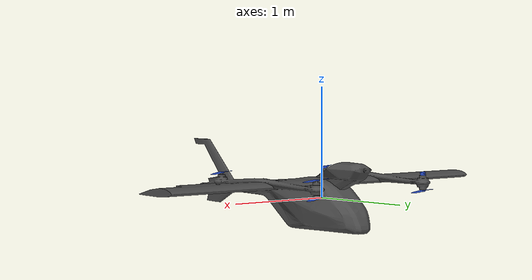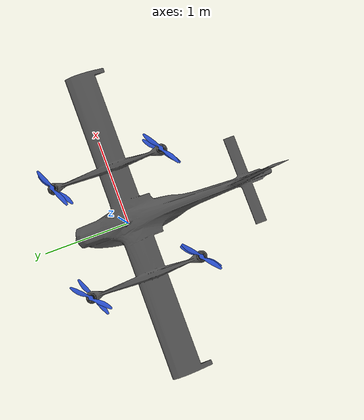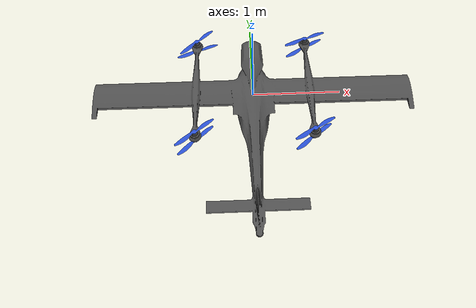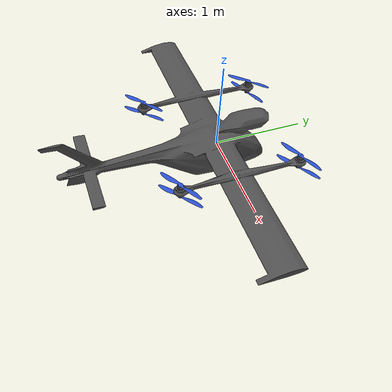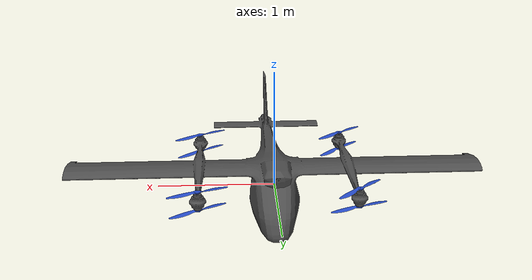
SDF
<?xml version="1.0"?>
<sdf version='1.5'>
  <model name='airmedic'>
    <link name='base_link'>
      <inertial>
        <pose>0 0 0 0 0 0</pose>
        <mass>28.103</mass>
        <inertia>
          <ixx>4.8387</ixx>
          <ixy>8.9699e-05</ixy>
          <ixz>0.00037419</ixz>
          <iyy>10.112</iyy>
          <iyz>0.098831</iyz>
          <izz>13.809</izz>
        </inertia>
      </inertial>
      <collision name='base_link_collision'>
        <pose>0 0 0 0 -0 0</pose>
        <geometry>
          <box>
            <size>1 1 1</size>
          </box>
          <mesh>
            <scale>1 1 1</scale>
            <uri>model://airmedic/meshes/base_link.dae</uri>
          </mesh>
        </geometry>
        <surface>
          <contact>
            <ode>
              <kp>600000</kp>
              <kd>6.0</kd>
              <max_vel>0.6</max_vel>
              <min_depth>0.006</min_depth>
            </ode>
          </contact>
          <friction>
            <ode/>
          </friction>
        </surface>
      </collision>
      <visual name='base_link_visual'>
        <pose>0 0 0 0 -0 0</pose>
        <geometry>
          <mesh>
            <scale>1 1 1</scale>
            <uri>model://airmedic/meshes/base_link.dae</uri>
          </mesh>
        </geometry>
        <material>
          <script>
            <name>Gazebo/DarkGrey</name>
            <uri>__default__</uri>
          </script>
        </material>
      </visual>
    </link>
    <link name='airmedic/imu_link'>
      <pose>0 0 0 0 0 0</pose>
      <inertial>
        <pose>0 0 0 0 0 0</pose>
        <mass>0.015</mass>
        <inertia>
          <ixx>1e-05</ixx>
          <ixy>0</ixy>
          <ixz>0</ixz>
          <iyy>1e-05</iyy>
          <iyz>0</iyz>
          <izz>1e-05</izz>
        </inertia>
      </inertial>
    </link>
    <joint name='airmedic/imu_joint' type='revolute'>
      <child>airmedic/imu_link</child>
      <parent>base_link</parent>
      <axis>
        <xyz>1 0 0</xyz>
        <limit>
          <lower>0</lower>
          <upper>0</upper>
          <effort>0</effort>
          <velocity>0</velocity>
        </limit>
        <dynamics>
          <spring_reference>0</spring_reference>
          <spring_stiffness>0</spring_stiffness>
        </dynamics>
        <use_parent_model_frame>1</use_parent_model_frame>
      </axis>
    </joint>
    <include>
      <uri>model://airspeed</uri>
      <pose>0 0 0 0 0 0</pose>
      <name>airspeed</name>
    </include>
    <include>
      <uri>model://gps</uri>
      <pose>0 0 0 0 0 0</pose>
      <name>gps</name>
    </include>
    <joint name='airspeed_joint' type='fixed'>
      <child>airspeed::link</child>
      <parent>base_link</parent>
    </joint>
    <joint name='gps_joint' type='fixed'>
      <child>gps::link</child>
      <parent>base_link</parent>
    </joint>
    <joint name='VV1' type='revolute'>
      <pose relative_to='base_link'>0.64286 0.64302 0.22124 0 -0 0</pose>
      <parent>base_link</parent>
      <child>Link_8</child>
      <axis>
        <xyz>0 0 1</xyz>
        <limit>
          <lower>-1e+16</lower>
          <upper>1e+16</upper>
        </limit>
        <dynamics>
          <spring_reference>0</spring_reference>
          <spring_stiffness>0</spring_stiffness>
        </dynamics>
        <use_parent_model_frame>1</use_parent_model_frame>
      </axis>
    </joint>
    <link name='Link_8'>
      <pose relative_to='VV1'>0 0 0 0 -0 0</pose>
      <inertial>
        <pose>-0 -0 0.00531 0 -0 0</pose>
        <mass>0.0625</mass>
        <inertia>
          <ixx>1.0888e-05</ixx>
          <ixy>1.2773e-05</ixy>
          <ixz>-1.0342e-11</ixz>
          <iyy>0.00090319</iyy>
          <iyz>1.2261e-12</iyz>
          <izz>0.0009134</izz>
        </inertia>
      </inertial>
      <collision name='Link_8_collision'>
        <pose>0 0 0 0 -0 0</pose>
        <geometry>
          <mesh>
            <scale>1 1 1</scale>
            <uri>model://airmedic/meshes/Link_8.dae</uri>
          </mesh>
        </geometry>
        <surface>
          <contact>
            <ode/>
          </contact>
          <friction>
            <ode/>
          </friction>
        </surface>
      </collision>
      <visual name='Link_8_visual'>
        <pose>0 0 0 0 -0 0</pose>
        <geometry>
          <mesh>
            <scale>1 1 1</scale>
            <uri>model://airmedic/meshes/Link_8.dae</uri>
          </mesh>
        </geometry>
        <material>
          <script>
            <name>Gazebo/Blue</name>
            <uri>__default__</uri>
          </script>
        </material>
      </visual>
      <gravity>1</gravity>
      <velocity_decay/>
      <self_collide>0</self_collide>
    </link>
    <joint name='VV2' type='revolute'>
      <pose relative_to='base_link'>-0.64286 0.64302 0.22124 0 -0 0</pose>
      <parent>base_link</parent>
      <child>Link_9</child>
      <axis>
        <xyz>0 0 1</xyz>
        <limit>
          <lower>-1e+16</lower>
          <upper>1e+16</upper>
        </limit>
        <dynamics>
          <spring_reference>0</spring_reference>
          <spring_stiffness>0</spring_stiffness>
        </dynamics>
        <use_parent_model_frame>1</use_parent_model_frame>
      </axis>
    </joint>
    <link name='Link_9'>
      <pose relative_to='VV2'>0 0 0 0 -0 0</pose>
      <inertial>
        <pose>-0 -0 0.00531 0 -0 0</pose>
        <mass>0.0625</mass>
        <inertia>
          <ixx>1.0888e-05</ixx>
          <ixy>-1.2772e-05</ixy>
          <ixz>-1.7183e-12</ixz>
          <iyy>0.00090318</iyy>
          <iyz>1.3497e-12</iyz>
          <izz>0.0009134</izz>
        </inertia>
      </inertial>
      <collision name='Link_9_collision'>
        <pose>0 0 0 0 -0 0</pose>
        <geometry>
          <mesh>
            <scale>1 1 1</scale>
            <uri>model://airmedic/meshes/Link_9.dae</uri>
          </mesh>
        </geometry>
        <surface>
          <contact>
            <ode/>
          </contact>
          <friction>
            <ode/>
          </friction>
        </surface>
      </collision>
      <visual name='Link_9_visual'>
        <pose>0 0 0 0 -0 0</pose>
        <geometry>
          <mesh>
            <scale>1 1 1</scale>
            <uri>model://airmedic/meshes/Link_9.dae</uri>
          </mesh>
        </geometry>
        <material>
          <script>
            <name>Gazebo/Blue</name>
            <uri>__default__</uri>
          </script>
        </material>
      </visual>
      <gravity>1</gravity>
      <velocity_decay/>
      <self_collide>0</self_collide>
    </link>
    <joint name='VV3' type='revolute'>
      <pose relative_to='base_link'>-0.64286 -0.6427 0.22124 0 -0 0</pose>
      <parent>base_link</parent>
      <child>Link_10</child>
      <axis>
        <xyz>0 0 1</xyz>
        <limit>
          <lower>-1e+16</lower>
          <upper>1e+16</upper>
        </limit>
        <dynamics>
          <spring_reference>0</spring_reference>
          <spring_stiffness>0</spring_stiffness>
        </dynamics>
        <use_parent_model_frame>1</use_parent_model_frame>
      </axis>
    </joint>
    <link name='Link_10'>
      <pose relative_to='VV3'>0 0 0 0 -0 0</pose>
      <inertial>
        <pose>0 0 0.00531 0 -0 0</pose>
        <mass>0.0625</mass>
        <inertia>
          <ixx>1.0888e-05</ixx>
          <ixy>1.2773e-05</ixy>
          <ixz>1.0342e-11</ixz>
          <iyy>0.00090319</iyy>
          <iyz>-1.2261e-12</iyz>
          <izz>0.0009134</izz>
        </inertia>
      </inertial>
      <collision name='Link_10_collision'>
        <pose>0 0 0 0 -0 0</pose>
        <geometry>
          <mesh>
            <scale>1 1 1</scale>
            <uri>model://airmedic/meshes/Link_10.dae</uri>
          </mesh>
        </geometry>
        <surface>
          <contact>
            <ode/>
          </contact>
          <friction>
            <ode/>
          </friction>
        </surface>
      </collision>
      <visual name='Link_10_visual'>
        <pose>0 0 0 0 -0 0</pose>
        <geometry>
          <mesh>
            <scale>1 1 1</scale>
            <uri>model://airmedic/meshes/Link_10.dae</uri>
          </mesh>
        </geometry>
        <material>
          <script>
            <name>Gazebo/Blue</name>
            <uri>__default__</uri>
          </script>
        </material>
      </visual>
      <gravity>1</gravity>
      <velocity_decay/>
      <self_collide>0</self_collide>
    </link>
    <joint name='VV4' type='revolute'>
      <pose relative_to='base_link'>0.64286 -0.6427 0.22124 0 -0 0</pose>
      <parent>base_link</parent>
      <child>Link_11</child>
      <axis>
        <xyz>0 0 1</xyz>
        <limit>
          <lower>-1e+16</lower>
          <upper>1e+16</upper>
        </limit>
        <dynamics>
          <spring_reference>0</spring_reference>
          <spring_stiffness>0</spring_stiffness>
        </dynamics>
        <use_parent_model_frame>1</use_parent_model_frame>
      </axis>
    </joint>
    <link name='Link_11'>
      <pose relative_to='VV4'>0 0 0 0 -0 0</pose>
      <inertial>
        <pose>0 0 0.00531 0 -0 0</pose>
        <mass>0.0625</mass>
        <inertia>
          <ixx>1.0888e-05</ixx>
          <ixy>-1.2772e-05</ixy>
          <ixz>1.7183e-12</ixz>
          <iyy>0.00090318</iyy>
          <iyz>-1.3497e-12</iyz>
          <izz>0.0009134</izz>
        </inertia>
      </inertial>
      <collision name='Link_11_collision'>
        <pose>0 0 0 0 -0 0</pose>
        <geometry>
          <mesh>
            <scale>1 1 1</scale>
            <uri>model://airmedic/meshes/Link_11.dae</uri>
          </mesh>
        </geometry>
        <surface>
          <contact>
            <ode/>
          </contact>
          <friction>
            <ode/>
          </friction>
        </surface>
      </collision>
      <visual name='Link_11_visual'>
        <pose>0 0 0 0 -0 0</pose>
        <geometry>
          <mesh>
            <scale>1 1 1</scale>
            <uri>model://airmedic/meshes/Link_11.dae</uri>
          </mesh>
        </geometry>
        <material>
          <script>
            <name>Gazebo/Blue</name>
            <uri>__default__</uri>
          </script>
        </material>
      </visual>
      <gravity>1</gravity>
      <velocity_decay/>
      <self_collide>0</self_collide>
    </link>
    <joint name='VV5' type='revolute'>
      <pose relative_to='base_link'>-0.64286 0.64302 0.0645 0 -0 0</pose>
      <parent>base_link</parent>
      <child>Link_12</child>
      <axis>
        <xyz>0 0 1</xyz>
        <limit>
          <lower>-1e+16</lower>
          <upper>1e+16</upper>
        </limit>
        <dynamics>
          <spring_reference>0</spring_reference>
          <spring_stiffness>0</spring_stiffness>
        </dynamics>
        <use_parent_model_frame>1</use_parent_model_frame>
      </axis>
    </joint>
    <link name='Link_12'>
      <pose relative_to='VV5'>0 0 0 0 -0 0</pose>
      <inertial>
        <pose>0 0 -0.004947 0 -0 0</pose>
        <mass>0.0625</mass>
        <inertia>
          <ixx>1.0888e-05</ixx>
          <ixy>1.2773e-05</ixy>
          <ixz>1.0342e-11</ixz>
          <iyy>0.00090319</iyy>
          <iyz>-1.2261e-12</iyz>
          <izz>0.0009134</izz>
        </inertia>
      </inertial>
      <collision name='Link_12_collision'>
        <pose>0 0 0 0 -0 0</pose>
        <geometry>
          <mesh>
            <scale>1 1 1</scale>
            <uri>model://airmedic/meshes/Link_12.dae</uri>
          </mesh>
        </geometry>
        <surface>
          <contact>
            <ode/>
          </contact>
          <friction>
            <ode/>
          </friction>
        </surface>
      </collision>
      <visual name='Link_12_visual'>
        <pose>0 0 0 0 -0 0</pose>
        <geometry>
          <mesh>
            <scale>1 1 1</scale>
            <uri>model://airmedic/meshes/Link_12.dae</uri>
          </mesh>
        </geometry>
        <material>
          <script>
            <name>Gazebo/Blue</name>
            <uri>__default__</uri>
          </script>
        </material>
      </visual>
      <gravity>1</gravity>
      <velocity_decay/>
      <self_collide>0</self_collide>
    </link>
    <joint name='VV6' type='revolute'>
      <pose relative_to='base_link'>0.64286 0.64302 0.0645 0 -0 0</pose>
      <parent>base_link</parent>
      <child>Link_13</child>
      <axis>
        <xyz>0 0 1</xyz>
        <limit>
          <lower>-1e+16</lower>
          <upper>1e+16</upper>
        </limit>
        <dynamics>
          <spring_reference>0</spring_reference>
          <spring_stiffness>0</spring_stiffness>
        </dynamics>
        <use_parent_model_frame>1</use_parent_model_frame>
      </axis>
    </joint>
    <link name='Link_13'>
      <pose relative_to='VV6'>0 0 0 0 -0 0</pose>
      <inertial>
        <pose>0 0 -0.004947 0 -0 0</pose>
        <mass>0.0625</mass>
        <inertia>
          <ixx>1.0888e-05</ixx>
          <ixy>-1.2772e-05</ixy>
          <ixz>1.7183e-12</ixz>
          <iyy>0.00090318</iyy>
          <iyz>-1.3497e-12</iyz>
          <izz>0.0009134</izz>
        </inertia>
      </inertial>
      <collision name='Link_13_collision'>
        <pose>0 0 0 0 -0 0</pose>
        <geometry>
          <mesh>
            <scale>1 1 1</scale>
            <uri>model://airmedic/meshes/Link_13.dae</uri>
          </mesh>
        </geometry>
        <surface>
          <contact>
            <ode/>
          </contact>
          <friction>
            <ode/>
          </friction>
        </surface>
      </collision>
      <visual name='Link_13_visual'>
        <pose>0 0 0 0 -0 0</pose>
        <geometry>
          <mesh>
            <scale>1 1 1</scale>
            <uri>model://airmedic/meshes/Link_13.dae</uri>
          </mesh>
        </geometry>
        <material>
          <script>
            <name>Gazebo/Blue</name>
            <uri>__default__</uri>
          </script>
        </material>
      </visual>
      <gravity>1</gravity>
      <velocity_decay/>
      <self_collide>0</self_collide>
    </link>
    <joint name='VV7' type='revolute'>
      <pose relative_to='base_link'>0.64286 -0.6427 0.0645 0 -0 0</pose>
      <parent>base_link</parent>
      <child>Link_14</child>
      <axis>
        <xyz>0 0 1</xyz>
        <limit>
          <lower>-1e+16</lower>
          <upper>1e+16</upper>
        </limit>
        <dynamics>
          <spring_reference>0</spring_reference>
          <spring_stiffness>0</spring_stiffness>
        </dynamics>
        <use_parent_model_frame>1</use_parent_model_frame>
      </axis>
    </joint>
    <link name='Link_14'>
      <pose relative_to='VV7'>0 0 0 0 -0 0</pose>
      <inertial>
        <pose>0 0 -0.004947 0 -0 0</pose>
        <mass>0.0625</mass>
        <inertia>
          <ixx>1.0888e-05</ixx>
          <ixy>1.2773e-05</ixy>
          <ixz>1.0342e-11</ixz>
          <iyy>0.00090319</iyy>
          <iyz>-1.2261e-12</iyz>
          <izz>0.0009134</izz>
        </inertia>
      </inertial>
      <collision name='Link_14_collision'>
        <pose>0 0 0 0 -0 0</pose>
        <geometry>
          <mesh>
            <scale>1 1 1</scale>
            <uri>model://airmedic/meshes/Link_14.dae</uri>
          </mesh>
        </geometry>
        <surface>
          <contact>
            <ode/>
          </contact>
          <friction>
            <ode/>
          </friction>
        </surface>
      </collision>
      <visual name='Link_14_visual'>
        <pose>0 0 0 0 -0 0</pose>
        <geometry>
          <mesh>
            <scale>1 1 1</scale>
            <uri>model://airmedic/meshes/Link_14.dae</uri>
          </mesh>
        </geometry>
        <material>
          <script>
            <name>Gazebo/Blue</name>
            <uri>__default__</uri>
          </script>
        </material>
      </visual>
      <gravity>1</gravity>
      <velocity_decay/>
      <self_collide>0</self_collide>
    </link>
    <joint name='VV8' type='revolute'>
      <pose relative_to='base_link'>-0.64286 -0.6427 0.0645 0 -0 0</pose>
      <parent>base_link</parent>
      <child>Link_15</child>
      <axis>
        <xyz>0 0 1</xyz>
        <limit>
          <lower>-1e+16</lower>
          <upper>1e+16</upper>
        </limit>
        <dynamics>
          <spring_reference>0</spring_reference>
          <spring_stiffness>0</spring_stiffness>
        </dynamics>
        <use_parent_model_frame>1</use_parent_model_frame>
      </axis>
    </joint>
    <link name='Link_15'>
      <pose relative_to='VV8'>0 0 0 0 -0 0</pose>
      <inertial>
        <pose>0 0 -0.004947 0 -0 0</pose>
        <mass>0.0625</mass>
        <inertia>
          <ixx>1.0888e-05</ixx>
          <ixy>-1.2772e-05</ixy>
          <ixz>1.7183e-12</ixz>
          <iyy>0.00090318</iyy>
          <iyz>-1.3497e-12</iyz>
          <izz>0.0009134</izz>
        </inertia>
      </inertial>
      <collision name='Link_15_collision'>
        <pose>0 0 0 0 -0 0</pose>
        <geometry>
          <mesh>
            <scale>1 1 1</scale>
            <uri>model://airmedic/meshes/Link_15.dae</uri>
          </mesh>
        </geometry>
        <surface>
          <contact>
            <ode/>
          </contact>
          <friction>
            <ode/>
          </friction>
        </surface>
      </collision>
      <visual name='Link_15_visual'>
        <pose>0 0 0 0 -0 0</pose>
        <geometry>
          <mesh>
            <scale>1 1 1</scale>
            <uri>model://airmedic/meshes/Link_15.dae</uri>
          </mesh>
        </geometry>
        <material>
          <script>
            <name>Gazebo/Blue</name>
            <uri>__default__</uri>
          </script>
        </material>
      </visual>
      <gravity>1</gravity>
      <velocity_decay/>
      <self_collide>0</self_collide>
    </link>
    <plugin name='VV1' filename='libgazebo_motor_model.so'>
      <robotNamespace></robotNamespace>
      <jointName>VV1</jointName>
      <linkName>Link_8</linkName>
      <turningDirection>ccw</turningDirection>
      <timeConstantUp>0.0125</timeConstantUp>
      <timeConstantDown>0.025</timeConstantDown>
      <maxRotVelocity>1500</maxRotVelocity>
      <motorConstant>2e-05</motorConstant>
      <momentConstant>0.06</momentConstant>
      <commandSubTopic>/gazebo/command/motor_speed</commandSubTopic>
      <motorNumber>0</motorNumber>
      <rotorDragCoefficient>0.000106428</rotorDragCoefficient>
      <rollingMomentCoefficient>1e-6</rollingMomentCoefficient>
      <motorSpeedPubTopic>/motor_speed/0</motorSpeedPubTopic>
      <rotorVelocitySlowdownSim>20</rotorVelocitySlowdownSim>
    </plugin>
    <plugin name='VV2' filename='libgazebo_motor_model.so'>
      <robotNamespace></robotNamespace>
      <jointName>VV2</jointName>
      <linkName>Link_9</linkName>
      <turningDirection>cw</turningDirection>
      <timeConstantUp>0.0125</timeConstantUp>
      <timeConstantDown>0.025</timeConstantDown>
      <maxRotVelocity>1500</maxRotVelocity>
      <motorConstant>2e-05</motorConstant>
      <momentConstant>0.06</momentConstant>
      <commandSubTopic>/gazebo/command/motor_speed</commandSubTopic>
      <motorNumber>1</motorNumber>
      <rotorDragCoefficient>0.000106428</rotorDragCoefficient>
      <rollingMomentCoefficient>1e-6</rollingMomentCoefficient>
      <motorSpeedPubTopic>/motor_speed/1</motorSpeedPubTopic>
      <rotorVelocitySlowdownSim>20</rotorVelocitySlowdownSim>
    </plugin>
    <plugin name='VV3' filename='libgazebo_motor_model.so'>
      <robotNamespace></robotNamespace>
      <jointName>VV3</jointName>
      <linkName>Link_10</linkName>
      <turningDirection>ccw</turningDirection>
      <timeConstantUp>0.0125</timeConstantUp>
      <timeConstantDown>0.025</timeConstantDown>
      <maxRotVelocity>1500</maxRotVelocity>
      <motorConstant>2e-05</motorConstant>
      <momentConstant>0.06</momentConstant>
      <commandSubTopic>/gazebo/command/motor_speed</commandSubTopic>
      <motorNumber>2</motorNumber>
      <rotorDragCoefficient>0.000106428</rotorDragCoefficient>
      <rollingMomentCoefficient>1e-6</rollingMomentCoefficient>
      <motorSpeedPubTopic>/motor_speed/2</motorSpeedPubTopic>
      <rotorVelocitySlowdownSim>20</rotorVelocitySlowdownSim>
    </plugin>
    <plugin name='VV4' filename='libgazebo_motor_model.so'>
      <robotNamespace></robotNamespace>
      <jointName>VV4</jointName>
      <linkName>Link_11</linkName>
      <turningDirection>cw</turningDirection>
      <timeConstantUp>0.0125</timeConstantUp>
      <timeConstantDown>0.025</timeConstantDown>
      <maxRotVelocity>1500</maxRotVelocity>
      <motorConstant>2e-05</motorConstant>
      <momentConstant>0.06</momentConstant>
      <commandSubTopic>/gazebo/command/motor_speed</commandSubTopic>
      <motorNumber>3</motorNumber>
      <rotorDragCoefficient>0.000106428</rotorDragCoefficient>
      <rollingMomentCoefficient>1e-6</rollingMomentCoefficient>
      <motorSpeedPubTopic>/motor_speed/3</motorSpeedPubTopic>
      <rotorVelocitySlowdownSim>20</rotorVelocitySlowdownSim>
    </plugin>
    <plugin name='VV5' filename='libgazebo_motor_model.so'>
      <robotNamespace></robotNamespace>
      <jointName>VV5</jointName>
      <linkName>Link_12</linkName>
      <turningDirection>ccw</turningDirection>
      <timeConstantUp>0.0125</timeConstantUp>
      <timeConstantDown>0.025</timeConstantDown>
      <maxRotVelocity>1500</maxRotVelocity>
      <motorConstant>2e-05</motorConstant>
      <momentConstant>0.06</momentConstant>
      <commandSubTopic>/gazebo/command/motor_speed</commandSubTopic>
      <motorNumber>4</motorNumber>
      <rotorDragCoefficient>0.000106428</rotorDragCoefficient>
      <rollingMomentCoefficient>1e-6</rollingMomentCoefficient>
      <motorSpeedPubTopic>/motor_speed/4</motorSpeedPubTopic>
      <rotorVelocitySlowdownSim>20</rotorVelocitySlowdownSim>
    </plugin>
    <plugin name='VV6' filename='libgazebo_motor_model.so'>
      <robotNamespace></robotNamespace>
      <jointName>VV6</jointName>
      <linkName>Link_13</linkName>
      <turningDirection>cw</turningDirection>
      <timeConstantUp>0.0125</timeConstantUp>
      <timeConstantDown>0.025</timeConstantDown>
      <maxRotVelocity>1500</maxRotVelocity>
      <motorConstant>2e-05</motorConstant>
      <momentConstant>0.06</momentConstant>
      <commandSubTopic>/gazebo/command/motor_speed</commandSubTopic>
      <motorNumber>5</motorNumber>
      <rotorDragCoefficient>0.000106428</rotorDragCoefficient>
      <rollingMomentCoefficient>1e-6</rollingMomentCoefficient>
      <motorSpeedPubTopic>/motor_speed/5</motorSpeedPubTopic>
      <rotorVelocitySlowdownSim>20</rotorVelocitySlowdownSim>
    </plugin>
    <plugin name='VV7' filename='libgazebo_motor_model.so'>
      <robotNamespace></robotNamespace>
      <jointName>VV7</jointName>
      <linkName>Link_14</linkName>
      <turningDirection>ccw</turningDirection>
      <timeConstantUp>0.0125</timeConstantUp>
      <timeConstantDown>0.025</timeConstantDown>
      <maxRotVelocity>1500</maxRotVelocity>
      <motorConstant>2e-05</motorConstant>
      <momentConstant>0.06</momentConstant>
      <commandSubTopic>/gazebo/command/motor_speed</commandSubTopic>
      <motorNumber>6</motorNumber>
      <rotorDragCoefficient>0.000106428</rotorDragCoefficient>
      <rollingMomentCoefficient>1e-6</rollingMomentCoefficient>
      <motorSpeedPubTopic>/motor_speed/6</motorSpeedPubTopic>
      <rotorVelocitySlowdownSim>20</rotorVelocitySlowdownSim>
    </plugin>
    <plugin name='VV8' filename='libgazebo_motor_model.so'>
      <robotNamespace></robotNamespace>
      <jointName>VV8</jointName>
      <linkName>Link_15</linkName>
      <turningDirection>cw</turningDirection>
      <timeConstantUp>0.0125</timeConstantUp>
      <timeConstantDown>0.025</timeConstantDown>
      <maxRotVelocity>1500</maxRotVelocity>
      <motorConstant>2e-05</motorConstant>
      <momentConstant>0.06</momentConstant>
      <commandSubTopic>/gazebo/command/motor_speed</commandSubTopic>
      <motorNumber>7</motorNumber>
      <rotorDragCoefficient>0.000106428</rotorDragCoefficient>
      <rollingMomentCoefficient>1e-6</rollingMomentCoefficient>
      <motorSpeedPubTopic>/motor_speed/7</motorSpeedPubTopic>
      <rotorVelocitySlowdownSim>20</rotorVelocitySlowdownSim>
    </plugin>
    <plugin name='gazebo_imu_plugin' filename='libgazebo_imu_plugin.so'>
      <robotNamespace></robotNamespace>
      <linkName>airmedic/imu_link</linkName>
      <imuTopic>/imu</imuTopic>
      <gyroscopeNoiseDensity>0.0003394</gyroscopeNoiseDensity>
      <gyroscopeRandomWalk>3.8785e-05</gyroscopeRandomWalk>
      <gyroscopeBiasCorrelationTime>1000.0</gyroscopeBiasCorrelationTime>
      <gyroscopeTurnOnBiasSigma>0.0087</gyroscopeTurnOnBiasSigma>
      <accelerometerNoiseDensity>0.004</accelerometerNoiseDensity>
      <accelerometerRandomWalk>0.006</accelerometerRandomWalk>
      <accelerometerBiasCorrelationTime>300.0</accelerometerBiasCorrelationTime>
      <accelerometerTurnOnBiasSigma>0.196</accelerometerTurnOnBiasSigma>
    </plugin>
    <plugin name='groundtruth_plugin' filename='libgazebo_groundtruth_plugin.so'>
      <robotNamespace/>
    </plugin>
    <plugin name='magnetometer_plugin' filename='libgazebo_magnetometer_plugin.so'>
      <robotNamespace/>
      <pubRate>100</pubRate>
      <noiseDensity>0.0004</noiseDensity>
      <randomWalk>6.4e-06</randomWalk>
      <biasCorrelationTime>600</biasCorrelationTime>
      <magTopic>/mag</magTopic>
    </plugin>
    <plugin name='barometer_plugin' filename='libgazebo_barometer_plugin.so'>
      <robotNamespace/>
      <pubRate>50</pubRate>
      <baroTopic>/baro</baroTopic>
    </plugin>
    <plugin name='mavlink_interface' filename='libgazebo_mavlink_interface.so'>
      <robotNamespace></robotNamespace>
      <imuSubTopic>/imu</imuSubTopic>
      <magSubTopic>/mag</magSubTopic>
      <baroSubTopic>/baro</baroSubTopic>
      <mavlink_addr>INADDR_ANY</mavlink_addr>
      <mavlink_tcp_port>4560</mavlink_tcp_port>
      <mavlink_udp_port>14560</mavlink_udp_port>
      <serialEnabled>0</serialEnabled>
      <serialDevice>/dev/ttyACM0</serialDevice>
      <baudRate>921600</baudRate>
      <qgc_addr>INADDR_ANY</qgc_addr>
      <qgc_udp_port>14550</qgc_udp_port>
      <sdk_addr>INADDR_ANY</sdk_addr>
      <sdk_udp_port>14540</sdk_udp_port>
      <hil_mode>0</hil_mode>
      <hil_state_level>false</hil_state_level>
      <enable_lockstep>true</enable_lockstep>
      <use_tcp>true</use_tcp>
      <motorSpeedCommandPubTopic>/gazebo/command/motor_speed</motorSpeedCommandPubTopic>
      <control_channels>
        <channel name="VV1">
          <input_index>0</input_index>
          <input_offset>0</input_offset>
          <input_scaling>1500</input_scaling>
          <zero_position_disarmed>0</zero_position_disarmed>
          <zero_position_armed>0</zero_position_armed>
          <joint_control_type>velocity</joint_control_type>
          <joint_name>VV1</joint_name>
        </channel>
        <channel name="VV2">
          <input_index>1</input_index>
          <input_offset>0</input_offset>
          <input_scaling>1500</input_scaling>
          <zero_position_disarmed>0</zero_position_disarmed>
          <zero_position_armed>0</zero_position_armed>
          <joint_control_type>velocity</joint_control_type>
          <joint_name>VV2</joint_name>
        </channel>
        <channel name="VV3">
          <input_index>2</input_index>
          <input_offset>0</input_offset>
          <input_scaling>1500</input_scaling>
          <zero_position_disarmed>0</zero_position_disarmed>
          <zero_position_armed>0</zero_position_armed>
          <joint_control_type>velocity</joint_control_type>
          <joint_name>VV3</joint_name>
        </channel>
        <channel name="VV4">
          <input_index>3</input_index>
          <input_offset>0</input_offset>
          <input_scaling>1500</input_scaling>
          <zero_position_disarmed>0</zero_position_disarmed>
          <zero_position_armed>0</zero_position_armed>
          <joint_control_type>velocity</joint_control_type>
          <joint_name>VV4</joint_name>
        </channel>
        <channel name="VV5">
          <input_index>4</input_index>
          <input_offset>0</input_offset>
          <input_scaling>1500</input_scaling>
          <zero_position_disarmed>0</zero_position_disarmed>
          <zero_position_armed>0</zero_position_armed>
          <joint_control_type>velocity</joint_control_type>
          <joint_name>VV5</joint_name>
        </channel>
        <channel name="VV6">
          <input_index>5</input_index>
          <input_offset>0</input_offset>
          <input_scaling>1500</input_scaling>
          <zero_position_disarmed>0</zero_position_disarmed>
          <zero_position_armed>0</zero_position_armed>
          <joint_control_type>velocity</joint_control_type>
          <joint_name>VV6</joint_name>
        </channel>
        <channel name="VV7">
          <input_index>6</input_index>
          <input_offset>0</input_offset>
          <input_scaling>1500</input_scaling>
          <zero_position_disarmed>0</zero_position_disarmed>
          <zero_position_armed>0</zero_position_armed>
          <joint_control_type>velocity</joint_control_type>
          <joint_name>VV7</joint_name>
        </channel>
        <channel name="VV8">
          <input_index>7</input_index>
          <input_offset>0</input_offset>
          <input_scaling>1500</input_scaling>
          <zero_position_disarmed>0</zero_position_disarmed>
          <zero_position_armed>0</zero_position_armed>
          <joint_control_type>velocity</joint_control_type>
          <joint_name>VV8</joint_name>
        </channel>
      </control_channels>
    </plugin>
    <static>0</static>
  </model>
</sdf>

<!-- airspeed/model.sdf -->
<sdf version="1.6">
  <model name="airspeed">
    <link name="airspeed_link">
      <pose>0 0 0 0 0 0</pose>
      <inertial>
        <pose>0 0 0 0 0 0</pose>
        <mass>0.015</mass>
        <inertia>
          <ixx>1e-05</ixx>
          <ixy>0</ixy>
          <ixz>0</ixz>
          <iyy>1e-05</iyy>
          <iyz>0</iyz>
          <izz>1e-05</izz>
        </inertia>
      </inertial>
      <visual name="visual">
        <pose>0 0 0 0 1.57 0</pose>
        <geometry>
          <cylinder>
            <radius>0.004</radius>
            <length>0.08</length>
          </cylinder>
        </geometry> <!-- Black -->
        <material>
          <diffuse>0.0 0.0 0.0</diffuse>
          <specular>0.5 0.5 0.5</specular>
        </material>
      </visual>
      <sensor name="air_speed" type="air_speed">
        <pose>0 0 0 0 0 0</pose>
        <update_rate>5.0</update_rate>
        <always_on>1</always_on>
        <visualize>false</visualize>
      </sensor>
    </link>
  </model>
</sdf>

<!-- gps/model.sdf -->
<sdf version="1.6">
  <model name="gps">
    <link name="link">
      <pose>0 0 0 0 0 0</pose>
      <inertial>
        <pose>0 0 0 0 0 0</pose>
        <mass>0.015</mass>
        <inertia>
          <ixx>1e-05</ixx>
          <ixy>0</ixy>
          <ixz>0</ixz>
          <iyy>1e-05</iyy>
          <iyz>0</iyz>
          <izz>1e-05</izz>
        </inertia>
      </inertial>
      <visual name="visual">
        <geometry>
          <cylinder>
            <radius>0.01</radius>
            <length>0.002</length>
          </cylinder>
        </geometry>
        <material>
          <script>
            <name>Gazebo/Black</name>
            <uri>file://usr/share/gz/gz-sim8/media/gazebo.material</uri>
          </script>
        </material>
      </visual>
      <sensor name="gps" type="gps">
        <pose>0 0 0 0 0 0</pose>
        <update_rate>5.0</update_rate>
        <always_on>true</always_on>
        <visualize>false</visualize>
        <!-- GpsSensor noise currently not used -->
        <plugin name="gps_plugin" filename="libgazebo_gps_plugin.so">
          <robotNamespace></robotNamespace>
          <gpsNoise>true</gpsNoise>
          <gpsXYRandomWalk>2.0</gpsXYRandomWalk>
          <gpsZRandomWalk>4.0</gpsZRandomWalk>
          <gpsXYNoiseDensity>2.0e-4</gpsXYNoiseDensity>
          <gpsZNoiseDensity>4.0e-4</gpsZNoiseDensity>
          <gpsVXYNoiseDensity>0.2</gpsVXYNoiseDensity>
          <gpsVZNoiseDensity>0.4</gpsVZNoiseDensity>
        </plugin>
      </sensor>
    </link>
  </model>
</sdf>
